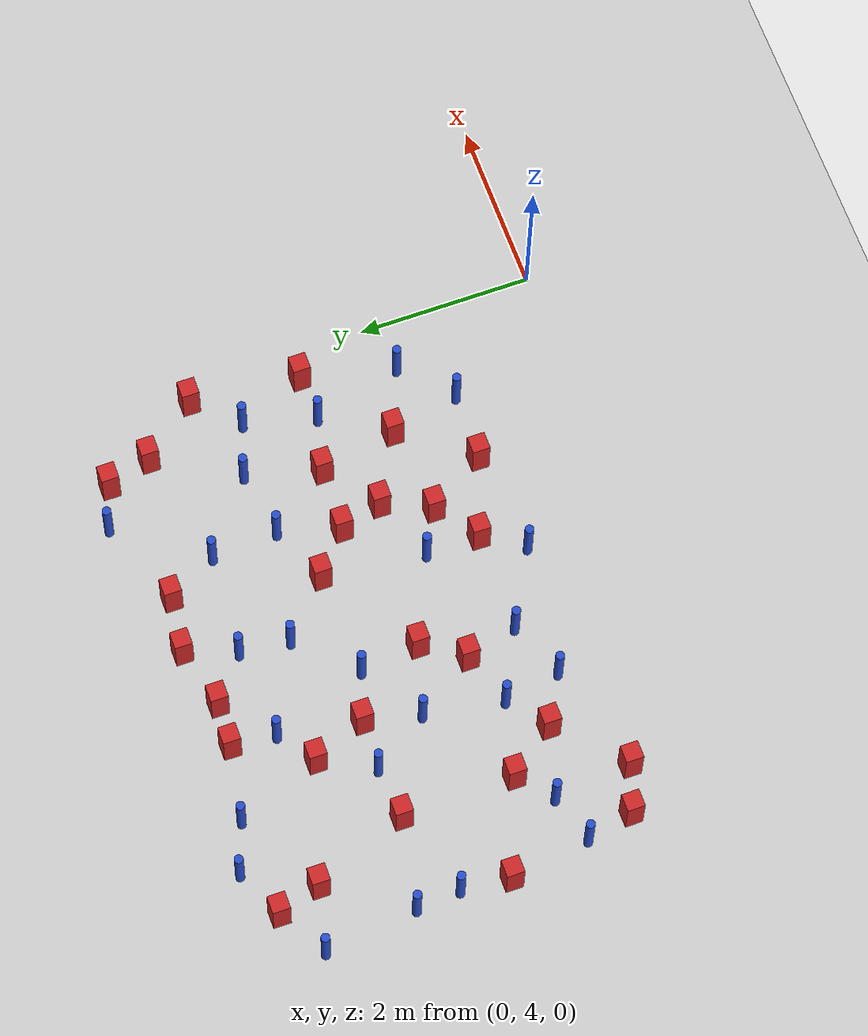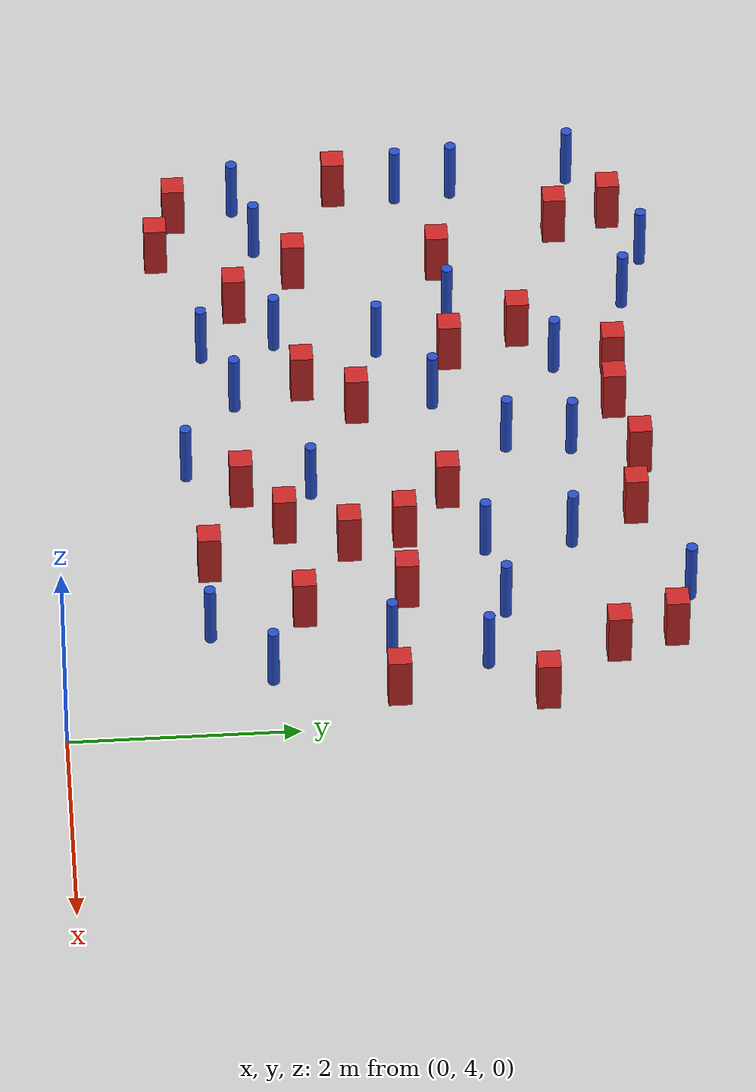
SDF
<sdf version="1.6">
 <world name="default">
  <model name="ground_plane">
   <static>1</static>
   <link name="link">
    <collision name="collision">
     <geometry><plane><normal>0 0 1</normal><size>100 100</size></plane></geometry>
     <surface><friction><ode><mu>100</mu><mu2>50</mu2></ode></friction></surface>
    </collision>
    <visual name="visual">
     <cast_shadows>0</cast_shadows>
     <geometry><plane><normal>0 0 1</normal><size>100 100</size></plane></geometry>
     <material>
      <ambient>1.0 1.0 1.0 1.0</ambient>
      <diffuse>0.8 0.8 0.8 1.0</diffuse>
      <specular>0.01 0.01 0.01 1.000000</specular>
     </material>
    </visual>
   </link>
  </model>
  <model name="square_post_obstacle8">
   <static>true</static>
   <pose>-2.85117813778 5.63529117119 1.91545236811e-07 -7.35059704564e-06 1.12565212e-07 2.39332434364e-05</pose>
   <link name="link">
    <pose>0 0 0.25 0 -0 0</pose>
    <inertial>
     <mass>100</mass>
     <inertia>
      <ixx>0.166667</ixx>
      <ixy>0</ixy>
      <ixz>0</ixz>
      <iyy>0.166667</iyy>
      <iyz>0</iyz>
      <izz>0.166667</izz>
     </inertia>
    </inertial>
    <collision name="collision"><geometry><box><size>.2 .2 .5</size></box></geometry></collision>
    <visual name="visual">
     <geometry><box><size>.2 .2 .5</size></box></geometry>
     <material>
      <script><name>Gazebo/Red</name><uri>file://media/materials/scripts/gazebo.material</uri></script>
     </material>
    </visual>
   </link>
  </model>
  <model name="pole_obstacle10">
   <static>true</static>
   <pose>-3.33697013683 7.99932537133 7.38925637345e-09 -8.47170692799e-08 1.24976765031e-08 -1.7451309302e-07</pose>
   <link name="link">
    <pose>0 0 0.3 0 -0 0</pose>
    <inertial>
     <mass>1</mass>
     <inertia><ixx>0.145833</ixx><ixy>0</ixy><ixz>0</ixz><iyy>0.145833</iyy><iyz>0</iyz><izz>0.125</izz></inertia>
    </inertial>
    <collision name="collision">
     <geometry><cylinder><radius>0.05</radius><length>.6</length></cylinder></geometry>
    </collision>
    <visual name="visual">
     <geometry><cylinder><radius>0.05</radius><length>.6</length></cylinder></geometry>
     <material>
      <script><name>Gazebo/Blue</name><uri>file://media/materials/scripts/gazebo.material</uri></script>
     </material>
    </visual>
   </link>
  </model>
  <model name="pole_obstacle13">
   <static>true</static>
   <pose>-5.12154698466 9.1769198991 7.38925637345e-09 -8.471706928e-08 1.24976765081e-08 -1.74513093015e-07</pose>
   <link name="link">
    <pose>0 0 0.3 0 -0 0</pose>
    <inertial>
     <mass>1</mass>
     <inertia><ixx>0.145833</ixx><ixy>0</ixy><ixz>0</ixz><iyy>0.145833</iyy><iyz>0</iyz><izz>0.125</izz></inertia>
    </inertial>
    <collision name="collision">
     <geometry><cylinder><radius>0.05</radius><length>.6</length></cylinder></geometry>
    </collision>
    <visual name="visual">
     <geometry><cylinder><radius>0.05</radius><length>.6</length></cylinder></geometry>
     <material>
      <script><name>Gazebo/Blue</name><uri>file://media/materials/scripts/gazebo.material</uri></script>
     </material>
    </visual>
   </link>
  </model>
  <model name="square_post_obstacle23">
   <static>true</static>
   <pose>-3.84272966479 6.70948858629 1.91545236811e-07 -7.35059704564e-06 1.12565212e-07 2.39332434364e-05</pose>
   <link name="link">
    <pose>0 0 0.25 0 -0 0</pose>
    <inertial>
     <mass>100</mass>
     <inertia>
      <ixx>0.166667</ixx>
      <ixy>0</ixy>
      <ixz>0</ixz>
      <iyy>0.166667</iyy>
      <iyz>0</iyz>
      <izz>0.166667</izz>
     </inertia>
    </inertial>
    <collision name="collision"><geometry><box><size>.2 .2 .5</size></box></geometry></collision>
    <visual name="visual">
     <geometry><box><size>.2 .2 .5</size></box></geometry>
     <material>
      <script><name>Gazebo/Red</name><uri>file://media/materials/scripts/gazebo.material</uri></script>
     </material>
    </visual>
   </link>
  </model>
  <model name="pole_obstacle17">
   <static>true</static>
   <pose>-4.62779772236 6.93861745635 7.38925637345e-09 -8.47170692796e-08 1.24976764786e-08 -1.74513093032e-07</pose>
   <link name="link">
    <pose>0 0 0.3 0 -0 0</pose>
    <inertial>
     <mass>1</mass>
     <inertia><ixx>0.145833</ixx><ixy>0</ixy><ixz>0</ixz><iyy>0.145833</iyy><iyz>0</iyz><izz>0.125</izz></inertia>
    </inertial>
    <collision name="collision">
     <geometry><cylinder><radius>0.05</radius><length>.6</length></cylinder></geometry>
    </collision>
    <visual name="visual">
     <geometry><cylinder><radius>0.05</radius><length>.6</length></cylinder></geometry>
     <material>
      <script><name>Gazebo/Blue</name><uri>file://media/materials/scripts/gazebo.material</uri></script>
     </material>
    </visual>
   </link>
  </model>
  <model name="pole_obstacle22">
   <static>true</static>
   <pose>-4.65389492948 5.37923687234 7.38925637345e-09 -8.47170692796e-08 1.24976764786e-08 -1.74513093032e-07</pose>
   <link name="link">
    <pose>0 0 0.3 0 -0 0</pose>
    <inertial>
     <mass>1</mass>
     <inertia><ixx>0.145833</ixx><ixy>0</ixy><ixz>0</ixz><iyy>0.145833</iyy><iyz>0</iyz><izz>0.125</izz></inertia>
    </inertial>
    <collision name="collision">
     <geometry><cylinder><radius>0.05</radius><length>.6</length></cylinder></geometry>
    </collision>
    <visual name="visual">
     <geometry><cylinder><radius>0.05</radius><length>.6</length></cylinder></geometry>
     <material>
      <script><name>Gazebo/Blue</name><uri>file://media/materials/scripts/gazebo.material</uri></script>
     </material>
    </visual>
   </link>
  </model>
  <model name="square_post_obstacle34">
   <static>true</static>
   <pose>-6.08547360905 8.63801015328 1.91545236811e-07 -7.35059704564e-06 1.12565212e-07 2.39332434364e-05</pose>
   <link name="link">
    <pose>0 0 0.25 0 -0 0</pose>
    <inertial>
     <mass>100</mass>
     <inertia>
      <ixx>0.166667</ixx>
      <ixy>0</ixy>
      <ixz>0</ixz>
      <iyy>0.166667</iyy>
      <iyz>0</iyz>
      <izz>0.166667</izz>
     </inertia>
    </inertial>
    <collision name="collision"><geometry><box><size>.2 .2 .5</size></box></geometry></collision>
    <visual name="visual">
     <geometry><box><size>.2 .2 .5</size></box></geometry>
     <material>
      <script><name>Gazebo/Red</name><uri>file://media/materials/scripts/gazebo.material</uri></script>
     </material>
    </visual>
   </link>
  </model>
  <model name="pole_obstacle32">
   <static>true</static>
   <pose>-1.29136101766 7.83882580298 7.38925637345e-09 -8.47170692799e-08 1.24976765033e-08 -1.74513093018e-07</pose>
   <link name="link">
    <pose>0 0 0.3 0 -0 0</pose>
    <inertial>
     <mass>1</mass>
     <inertia><ixx>0.145833</ixx><ixy>0</ixy><ixz>0</ixz><iyy>0.145833</iyy><iyz>0</iyz><izz>0.125</izz></inertia>
    </inertial>
    <collision name="collision">
     <geometry><cylinder><radius>0.05</radius><length>.6</length></cylinder></geometry>
    </collision>
    <visual name="visual">
     <geometry><cylinder><radius>0.05</radius><length>.6</length></cylinder></geometry>
     <material>
      <script><name>Gazebo/Blue</name><uri>file://media/materials/scripts/gazebo.material</uri></script>
     </material>
    </visual>
   </link>
  </model>
  <model name="pole_obstacle38">
   <static>true</static>
   <pose>-6.5599274437 5.75432917314 7.38925637345e-09 -8.47170692796e-08 1.24976764786e-08 -1.74513093032e-07</pose>
   <link name="link">
    <pose>0 0 0.3 0 -0 0</pose>
    <inertial>
     <mass>1</mass>
     <inertia><ixx>0.145833</ixx><ixy>0</ixy><ixz>0</ixz><iyy>0.145833</iyy><iyz>0</iyz><izz>0.125</izz></inertia>
    </inertial>
    <collision name="collision">
     <geometry><cylinder><radius>0.05</radius><length>.6</length></cylinder></geometry>
    </collision>
    <visual name="visual">
     <geometry><cylinder><radius>0.05</radius><length>.6</length></cylinder></geometry>
     <material>
      <script><name>Gazebo/Blue</name><uri>file://media/materials/scripts/gazebo.material</uri></script>
     </material>
    </visual>
   </link>
  </model>
  <model name="square_post_obstacle43">
   <static>true</static>
   <pose>-1.94631033463 5.3121222031 1.91545236811e-07 -7.35059704564e-06 1.12565212e-07 2.39332434364e-05</pose>
   <link name="link">
    <pose>0 0 0.25 0 -0 0</pose>
    <inertial>
     <mass>100</mass>
     <inertia>
      <ixx>0.166667</ixx>
      <ixy>0</ixy>
      <ixz>0</ixz>
      <iyy>0.166667</iyy>
      <iyz>0</iyz>
      <izz>0.166667</izz>
     </inertia>
    </inertial>
    <collision name="collision"><geometry><box><size>.2 .2 .5</size></box></geometry></collision>
    <visual name="visual">
     <geometry><box><size>.2 .2 .5</size></box></geometry>
     <material>
      <script><name>Gazebo/Red</name><uri>file://media/materials/scripts/gazebo.material</uri></script>
     </material>
    </visual>
   </link>
  </model>
  <model name="square_post_obstacle44">
   <static>true</static>
   <pose>-5.20450427669 5.69777726759 1.91545236811e-07 -7.35059704564e-06 1.12565212e-07 2.39332434364e-05</pose>
   <link name="link">
    <pose>0 0 0.25 0 -0 0</pose>
    <inertial>
     <mass>100</mass>
     <inertia>
      <ixx>0.166667</ixx>
      <ixy>0</ixy>
      <ixz>0</ixz>
      <iyy>0.166667</iyy>
      <iyz>0</iyz>
      <izz>0.166667</izz>
     </inertia>
    </inertial>
    <collision name="collision"><geometry><box><size>.2 .2 .5</size></box></geometry></collision>
    <visual name="visual">
     <geometry><box><size>.2 .2 .5</size></box></geometry>
     <material>
      <script><name>Gazebo/Red</name><uri>file://media/materials/scripts/gazebo.material</uri></script>
     </material>
    </visual>
   </link>
  </model>
  <model name="pole_obstacle47">
   <static>true</static>
   <pose>-2.0612578263 7.71829305685 7.38925637345e-09 -8.47170692798e-08 1.24976765033e-08 -1.74513093019e-07</pose>
   <link name="link">
    <pose>0 0 0.3 0 -0 0</pose>
    <inertial>
     <mass>1</mass>
     <inertia><ixx>0.145833</ixx><ixy>0</ixy><ixz>0</ixz><iyy>0.145833</iyy><iyz>0</iyz><izz>0.125</izz></inertia>
    </inertial>
    <collision name="collision">
     <geometry><cylinder><radius>0.05</radius><length>.6</length></cylinder></geometry>
    </collision>
    <visual name="visual">
     <geometry><cylinder><radius>0.05</radius><length>.6</length></cylinder></geometry>
     <material>
      <script><name>Gazebo/Blue</name><uri>file://media/materials/scripts/gazebo.material</uri></script>
     </material>
    </visual>
   </link>
  </model>
  <model name="square_post_obstacle53">
   <static>true</static>
   <pose>-5.649411428 7.54837377091 1.91545236811e-07 -7.35059704564e-06 1.12565212e-07 2.39332434364e-05</pose>
   <link name="link">
    <pose>0 0 0.25 0 -0 0</pose>
    <inertial>
     <mass>100</mass>
     <inertia>
      <ixx>0.166667</ixx>
      <ixy>0</ixy>
      <ixz>0</ixz>
      <iyy>0.166667</iyy>
      <iyz>0</iyz>
      <izz>0.166667</izz>
     </inertia>
    </inertial>
    <collision name="collision"><geometry><box><size>.2 .2 .5</size></box></geometry></collision>
    <visual name="visual">
     <geometry><box><size>.2 .2 .5</size></box></geometry>
     <material>
      <script><name>Gazebo/Red</name><uri>file://media/materials/scripts/gazebo.material</uri></script>
     </material>
    </visual>
   </link>
  </model>
  <model name="square_post_obstacle54">
   <static>true</static>
   <pose>-1.34369992556 6.10237967423 1.91545236811e-07 -7.35059704564e-06 1.12565212e-07 2.39332434364e-05</pose>
   <link name="link">
    <pose>0 0 0.25 0 -0 0</pose>
    <inertial>
     <mass>100</mass>
     <inertia>
      <ixx>0.166667</ixx>
      <ixy>0</ixy>
      <ixz>0</ixz>
      <iyy>0.166667</iyy>
      <iyz>0</iyz>
      <izz>0.166667</izz>
     </inertia>
    </inertial>
    <collision name="collision"><geometry><box><size>.2 .2 .5</size></box></geometry></collision>
    <visual name="visual">
     <geometry><box><size>.2 .2 .5</size></box></geometry>
     <material>
      <script><name>Gazebo/Red</name><uri>file://media/materials/scripts/gazebo.material</uri></script>
     </material>
    </visual>
   </link>
  </model>
  <model name="square_post_obstacle55">
   <static>true</static>
   <pose>-4.26743266888 9.01434277642 1.91545236811e-07 -7.35059704564e-06 1.12565212e-07 2.39332434364e-05</pose>
   <link name="link">
    <pose>0 0 0.25 0 -0 0</pose>
    <inertial>
     <mass>100</mass>
     <inertia>
      <ixx>0.166667</ixx>
      <ixy>0</ixy>
      <ixz>0</ixz>
      <iyy>0.166667</iyy>
      <iyz>0</iyz>
      <izz>0.166667</izz>
     </inertia>
    </inertial>
    <collision name="collision"><geometry><box><size>.2 .2 .5</size></box></geometry></collision>
    <visual name="visual">
     <geometry><box><size>.2 .2 .5</size></box></geometry>
     <material>
      <script><name>Gazebo/Red</name><uri>file://media/materials/scripts/gazebo.material</uri></script>
     </material>
    </visual>
   </link>
  </model>
  <model name="square_post_obstacle56">
   <static>true</static>
   <pose>-2.26100982355 7.02769687597 1.91545236811e-07 -7.35059704564e-06 1.12565212e-07 2.39332434364e-05</pose>
   <link name="link">
    <pose>0 0 0.25 0 -0 0</pose>
    <inertial>
     <mass>100</mass>
     <inertia>
      <ixx>0.166667</ixx>
      <ixy>0</ixy>
      <ixz>0</ixz>
      <iyy>0.166667</iyy>
      <iyz>0</iyz>
      <izz>0.166667</izz>
     </inertia>
    </inertial>
    <collision name="collision"><geometry><box><size>.2 .2 .5</size></box></geometry></collision>
    <visual name="visual">
     <geometry><box><size>.2 .2 .5</size></box></geometry>
     <material>
      <script><name>Gazebo/Red</name><uri>file://media/materials/scripts/gazebo.material</uri></script>
     </material>
    </visual>
   </link>
  </model>
  <model name="pole_obstacle61">
   <static>true</static>
   <pose>-0.608076688992 5.79210786569 7.38925637345e-09 -8.471706928e-08 1.24976765086e-08 -1.74513093015e-07</pose>
   <link name="link">
    <pose>0 0 0.3 0 -0 0</pose>
    <inertial>
     <mass>1</mass>
     <inertia><ixx>0.145833</ixx><ixy>0</ixy><ixz>0</ixz><iyy>0.145833</iyy><iyz>0</iyz><izz>0.125</izz></inertia>
    </inertial>
    <collision name="collision">
     <geometry><cylinder><radius>0.05</radius><length>.6</length></cylinder></geometry>
    </collision>
    <visual name="visual">
     <geometry><cylinder><radius>0.05</radius><length>.6</length></cylinder></geometry>
     <material>
      <script><name>Gazebo/Blue</name><uri>file://media/materials/scripts/gazebo.material</uri></script>
     </material>
    </visual>
   </link>
  </model>
  <model name="pole_obstacle64">
   <static>true</static>
   <pose>-5.05421728066 7.59828432886 7.38925637345e-09 -8.47170692796e-08 1.24976764786e-08 -1.74513093032e-07</pose>
   <link name="link">
    <pose>0 0 0.3 0 -0 0</pose>
    <inertial>
     <mass>1</mass>
     <inertia><ixx>0.145833</ixx><ixy>0</ixy><ixz>0</ixz><iyy>0.145833</iyy><iyz>0</iyz><izz>0.125</izz></inertia>
    </inertial>
    <collision name="collision">
     <geometry><cylinder><radius>0.05</radius><length>.6</length></cylinder></geometry>
    </collision>
    <visual name="visual">
     <geometry><cylinder><radius>0.05</radius><length>.6</length></cylinder></geometry>
     <material>
      <script><name>Gazebo/Blue</name><uri>file://media/materials/scripts/gazebo.material</uri></script>
     </material>
    </visual>
   </link>
  </model>
  <model name="square_post_obstacle75">
   <static>true</static>
   <pose>-1.52117082725 6.99808493489 1.91545236811e-07 -7.35059704564e-06 1.12565212e-07 2.39332434364e-05</pose>
   <link name="link">
    <pose>0 0 0.25 0 -0 0</pose>
    <inertial>
     <mass>100</mass>
     <inertia>
      <ixx>0.166667</ixx>
      <ixy>0</ixy>
      <ixz>0</ixz>
      <iyy>0.166667</iyy>
      <iyz>0</iyz>
      <izz>0.166667</izz>
     </inertia>
    </inertial>
    <collision name="collision"><geometry><box><size>.2 .2 .5</size></box></geometry></collision>
    <visual name="visual">
     <geometry><box><size>.2 .2 .5</size></box></geometry>
     <material>
      <script><name>Gazebo/Red</name><uri>file://media/materials/scripts/gazebo.material</uri></script>
     </material>
    </visual>
   </link>
  </model>
  <model name="pole_obstacle74">
   <static>true</static>
   <pose>-6.63972280259 7.23884683641 7.38925637345e-09 -8.47170692796e-08 1.24976764786e-08 -1.74513093032e-07</pose>
   <link name="link">
    <pose>0 0 0.3 0 -0 0</pose>
    <inertial>
     <mass>1</mass>
     <inertia><ixx>0.145833</ixx><ixy>0</ixy><ixz>0</ixz><iyy>0.145833</iyy><iyz>0</iyz><izz>0.125</izz></inertia>
    </inertial>
    <collision name="collision">
     <geometry><cylinder><radius>0.05</radius><length>.6</length></cylinder></geometry>
    </collision>
    <visual name="visual">
     <geometry><cylinder><radius>0.05</radius><length>.6</length></cylinder></geometry>
     <material>
      <script><name>Gazebo/Blue</name><uri>file://media/materials/scripts/gazebo.material</uri></script>
     </material>
    </visual>
   </link>
  </model>
  <model name="pole_obstacle79">
   <static>true</static>
   <pose>-2.10921225694 8.48121805027 7.38925637345e-09 -8.47170692793e-08 1.24976764408e-08 -1.74513093041e-07</pose>
   <link name="link">
    <pose>0 0 0.3 0 -0 0</pose>
    <inertial>
     <mass>1</mass>
     <inertia><ixx>0.145833</ixx><ixy>0</ixy><ixz>0</ixz><iyy>0.145833</iyy><iyz>0</iyz><izz>0.125</izz></inertia>
    </inertial>
    <collision name="collision">
     <geometry><cylinder><radius>0.05</radius><length>.6</length></cylinder></geometry>
    </collision>
    <visual name="visual">
     <geometry><cylinder><radius>0.05</radius><length>.6</length></cylinder></geometry>
     <material>
      <script><name>Gazebo/Blue</name><uri>file://media/materials/scripts/gazebo.material</uri></script>
     </material>
    </visual>
   </link>
  </model>
  <model name="square_post_obstacle79">
   <static>true</static>
   <pose>-5.62260687982 6.25186452101 1.91545236811e-07 -7.35059704564e-06 1.12565212e-07 2.39332434364e-05</pose>
   <link name="link">
    <pose>0 0 0.25 0 -0 0</pose>
    <inertial>
     <mass>100</mass>
     <inertia>
      <ixx>0.166667</ixx>
      <ixy>0</ixy>
      <ixz>0</ixz>
      <iyy>0.166667</iyy>
      <iyz>0</iyz>
      <izz>0.166667</izz>
     </inertia>
    </inertial>
    <collision name="collision"><geometry><box><size>.2 .2 .5</size></box></geometry></collision>
    <visual name="visual">
     <geometry><box><size>.2 .2 .5</size></box></geometry>
     <material>
      <script><name>Gazebo/Red</name><uri>file://media/materials/scripts/gazebo.material</uri></script>
     </material>
    </visual>
   </link>
  </model>
  <model name="pole_obstacle91">
   <static>true</static>
   <pose>-6.80543661352 8.81340913702 7.38925637345e-09 -8.471706928e-08 1.24976765081e-08 -1.74513093015e-07</pose>
   <link name="link">
    <pose>0 0 0.3 0 -0 0</pose>
    <inertial>
     <mass>1</mass>
     <inertia><ixx>0.145833</ixx><ixy>0</ixy><ixz>0</ixz><iyy>0.145833</iyy><iyz>0</iyz><izz>0.125</izz></inertia>
    </inertial>
    <collision name="collision">
     <geometry><cylinder><radius>0.05</radius><length>.6</length></cylinder></geometry>
    </collision>
    <visual name="visual">
     <geometry><cylinder><radius>0.05</radius><length>.6</length></cylinder></geometry>
     <material>
      <script><name>Gazebo/Blue</name><uri>file://media/materials/scripts/gazebo.material</uri></script>
     </material>
    </visual>
   </link>
  </model>
  <model name="square_post_obstacle83">
   <static>true</static>
   <pose>-3.76320044509 8.98286353952 1.91545236811e-07 -7.35059704564e-06 1.12565212e-07 2.39332434364e-05</pose>
   <link name="link">
    <pose>0 0 0.25 0 -0 0</pose>
    <inertial>
     <mass>100</mass>
     <inertia>
      <ixx>0.166667</ixx>
      <ixy>0</ixy>
      <ixz>0</ixz>
      <iyy>0.166667</iyy>
      <iyz>0</iyz>
      <izz>0.166667</izz>
     </inertia>
    </inertial>
    <collision name="collision"><geometry><box><size>.2 .2 .5</size></box></geometry></collision>
    <visual name="visual">
     <geometry><box><size>.2 .2 .5</size></box></geometry>
     <material>
      <script><name>Gazebo/Red</name><uri>file://media/materials/scripts/gazebo.material</uri></script>
     </material>
    </visual>
   </link>
  </model>
  <model name="pole_obstacle100">
   <static>true</static>
   <pose>-1.3965002214 9.44811167518 7.38925637345e-09 -8.47170692798e-08 1.24976764881e-08 -1.74513093027e-07</pose>
   <link name="link">
    <pose>0 0 0.3 0 -0 0</pose>
    <inertial>
     <mass>1</mass>
     <inertia><ixx>0.145833</ixx><ixy>0</ixy><ixz>0</ixz><iyy>0.145833</iyy><iyz>0</iyz><izz>0.125</izz></inertia>
    </inertial>
    <collision name="collision">
     <geometry><cylinder><radius>0.05</radius><length>.6</length></cylinder></geometry>
    </collision>
    <visual name="visual">
     <geometry><cylinder><radius>0.05</radius><length>.6</length></cylinder></geometry>
     <material>
      <script><name>Gazebo/Blue</name><uri>file://media/materials/scripts/gazebo.material</uri></script>
     </material>
    </visual>
   </link>
  </model>
  <model name="square_post_obstacle91">
   <static>true</static>
   <pose>-0.227013342698 8.11978466571 1.91545236811e-07 -7.35059704564e-06 1.12565212e-07 2.39332434364e-05</pose>
   <link name="link">
    <pose>0 0 0.25 0 -0 0</pose>
    <inertial>
     <mass>100</mass>
     <inertia>
      <ixx>0.166667</ixx>
      <ixy>0</ixy>
      <ixz>0</ixz>
      <iyy>0.166667</iyy>
      <iyz>0</iyz>
      <izz>0.166667</izz>
     </inertia>
    </inertial>
    <collision name="collision"><geometry><box><size>.2 .2 .5</size></box></geometry></collision>
    <visual name="visual">
     <geometry><box><size>.2 .2 .5</size></box></geometry>
     <material>
      <script><name>Gazebo/Red</name><uri>file://media/materials/scripts/gazebo.material</uri></script>
     </material>
    </visual>
   </link>
  </model>
  <model name="square_post_obstacle94">
   <static>true</static>
   <pose>-0.351096433382 6.85449015297 1.91545236811e-07 -7.35059704564e-06 1.12565212e-07 2.39332434364e-05</pose>
   <link name="link">
    <pose>0 0 0.25 0 -0 0</pose>
    <inertial>
     <mass>100</mass>
     <inertia>
      <ixx>0.166667</ixx>
      <ixy>0</ixy>
      <ixz>0</ixz>
      <iyy>0.166667</iyy>
      <iyz>0</iyz>
      <izz>0.166667</izz>
     </inertia>
    </inertial>
    <collision name="collision"><geometry><box><size>.2 .2 .5</size></box></geometry></collision>
    <visual name="visual">
     <geometry><box><size>.2 .2 .5</size></box></geometry>
     <material>
      <script><name>Gazebo/Red</name><uri>file://media/materials/scripts/gazebo.material</uri></script>
     </material>
    </visual>
   </link>
  </model>
  <model name="pole_obstacle108">
   <static>true</static>
   <pose>-1.1553570726 5.28086694591 7.38925637345e-09 -8.47170692799e-08 1.24976765033e-08 -1.74513093018e-07</pose>
   <link name="link">
    <pose>0 0 0.3 0 -0 0</pose>
    <inertial>
     <mass>1</mass>
     <inertia><ixx>0.145833</ixx><ixy>0</ixy><ixz>0</ixz><iyy>0.145833</iyy><iyz>0</iyz><izz>0.125</izz></inertia>
    </inertial>
    <collision name="collision">
     <geometry><cylinder><radius>0.05</radius><length>.6</length></cylinder></geometry>
    </collision>
    <visual name="visual">
     <geometry><cylinder><radius>0.05</radius><length>.6</length></cylinder></geometry>
     <material>
      <script><name>Gazebo/Blue</name><uri>file://media/materials/scripts/gazebo.material</uri></script>
     </material>
    </visual>
   </link>
  </model>
  <model name="pole_obstacle111">
   <static>true</static>
   <pose>-3.27678230397 8.57176367591 7.38925637345e-09 -8.47170692799e-08 1.24976765012e-08 -1.74513093021e-07</pose>
   <link name="link">
    <pose>0 0 0.3 0 -0 0</pose>
    <inertial>
     <mass>1</mass>
     <inertia><ixx>0.145833</ixx><ixy>0</ixy><ixz>0</ixz><iyy>0.145833</iyy><iyz>0</iyz><izz>0.125</izz></inertia>
    </inertial>
    <collision name="collision">
     <geometry><cylinder><radius>0.05</radius><length>.6</length></cylinder></geometry>
    </collision>
    <visual name="visual">
     <geometry><cylinder><radius>0.05</radius><length>.6</length></cylinder></geometry>
     <material>
      <script><name>Gazebo/Blue</name><uri>file://media/materials/scripts/gazebo.material</uri></script>
     </material>
    </visual>
   </link>
  </model>
  <model name="pole_obstacle115">
   <static>true</static>
   <pose>-4.77469274781 6.03304051025 7.38925637345e-09 -8.47170692796e-08 1.24976764786e-08 -1.74513093032e-07</pose>
   <link name="link">
    <pose>0 0 0.3 0 -0 0</pose>
    <inertial>
     <mass>1</mass>
     <inertia><ixx>0.145833</ixx><ixy>0</ixy><ixz>0</ixz><iyy>0.145833</iyy><iyz>0</iyz><izz>0.125</izz></inertia>
    </inertial>
    <collision name="collision">
     <geometry><cylinder><radius>0.05</radius><length>.6</length></cylinder></geometry>
    </collision>
    <visual name="visual">
     <geometry><cylinder><radius>0.05</radius><length>.6</length></cylinder></geometry>
     <material>
      <script><name>Gazebo/Blue</name><uri>file://media/materials/scripts/gazebo.material</uri></script>
     </material>
    </visual>
   </link>
  </model>
  <model name="square_post_obstacle104">
   <static>true</static>
   <pose>-2.37551149837 5.98932020288 1.91545236811e-07 -7.35059704564e-06 1.12565212e-07 2.39332434364e-05</pose>
   <link name="link">
    <pose>0 0 0.25 0 -0 0</pose>
    <inertial>
     <mass>100</mass>
     <inertia>
      <ixx>0.166667</ixx>
      <ixy>0</ixy>
      <ixz>0</ixz>
      <iyy>0.166667</iyy>
      <iyz>0</iyz>
      <izz>0.166667</izz>
     </inertia>
    </inertial>
    <collision name="collision"><geometry><box><size>.2 .2 .5</size></box></geometry></collision>
    <visual name="visual">
     <geometry><box><size>.2 .2 .5</size></box></geometry>
     <material>
      <script><name>Gazebo/Red</name><uri>file://media/materials/scripts/gazebo.material</uri></script>
     </material>
    </visual>
   </link>
  </model>
  <model name="pole_obstacle124">
   <static>true</static>
   <pose>-2.85721504192 6.24876067325 7.38925637345e-09 -8.47170692798e-08 1.24976765033e-08 -1.74513093019e-07</pose>
   <link name="link">
    <pose>0 0 0.3 0 -0 0</pose>
    <inertial>
     <mass>1</mass>
     <inertia><ixx>0.145833</ixx><ixy>0</ixy><ixz>0</ixz><iyy>0.145833</iyy><iyz>0</iyz><izz>0.125</izz></inertia>
    </inertial>
    <collision name="collision">
     <geometry><cylinder><radius>0.05</radius><length>.6</length></cylinder></geometry>
    </collision>
    <visual name="visual">
     <geometry><cylinder><radius>0.05</radius><length>.6</length></cylinder></geometry>
     <material>
      <script><name>Gazebo/Blue</name><uri>file://media/materials/scripts/gazebo.material</uri></script>
     </material>
    </visual>
   </link>
  </model>
  <model name="pole_obstacle126">
   <static>true</static>
   <pose>-3.15098827732 5.1698936235 7.38925637345e-09 -8.47170692798e-08 1.24976765033e-08 -1.74513093019e-07</pose>
   <link name="link">
    <pose>0 0 0.3 0 -0 0</pose>
    <inertial>
     <mass>1</mass>
     <inertia><ixx>0.145833</ixx><ixy>0</ixy><ixz>0</ixz><iyy>0.145833</iyy><iyz>0</iyz><izz>0.125</izz></inertia>
    </inertial>
    <collision name="collision">
     <geometry><cylinder><radius>0.05</radius><length>.6</length></cylinder></geometry>
    </collision>
    <visual name="visual">
     <geometry><cylinder><radius>0.05</radius><length>.6</length></cylinder></geometry>
     <material>
      <script><name>Gazebo/Blue</name><uri>file://media/materials/scripts/gazebo.material</uri></script>
     </material>
    </visual>
   </link>
  </model>
  <model name="pole_obstacle128">
   <static>true</static>
   <pose>-6.68076812294 7.74662865052 7.38925637345e-09 -8.47170692796e-08 1.24976764786e-08 -1.74513093032e-07</pose>
   <link name="link">
    <pose>0 0 0.3 0 -0 0</pose>
    <inertial>
     <mass>1</mass>
     <inertia><ixx>0.145833</ixx><ixy>0</ixy><ixz>0</ixz><iyy>0.145833</iyy><iyz>0</iyz><izz>0.125</izz></inertia>
    </inertial>
    <collision name="collision">
     <geometry><cylinder><radius>0.05</radius><length>.6</length></cylinder></geometry>
    </collision>
    <visual name="visual">
     <geometry><cylinder><radius>0.05</radius><length>.6</length></cylinder></geometry>
     <material>
      <script><name>Gazebo/Blue</name><uri>file://media/materials/scripts/gazebo.material</uri></script>
     </material>
    </visual>
   </link>
  </model>
  <model name="square_post_obstacle131">
   <static>true</static>
   <pose>-0.751566842856 8.76969732846 1.91545236811e-07 -7.35059704564e-06 1.12565212e-07 2.39332434364e-05</pose>
   <link name="link">
    <pose>0 0 0.25 0 -0 0</pose>
    <inertial>
     <mass>100</mass>
     <inertia>
      <ixx>0.166667</ixx>
      <ixy>0</ixy>
      <ixz>0</ixz>
      <iyy>0.166667</iyy>
      <iyz>0</iyz>
      <izz>0.166667</izz>
     </inertia>
    </inertial>
    <collision name="collision"><geometry><box><size>.2 .2 .5</size></box></geometry></collision>
    <visual name="visual">
     <geometry><box><size>.2 .2 .5</size></box></geometry>
     <material>
      <script><name>Gazebo/Red</name><uri>file://media/materials/scripts/gazebo.material</uri></script>
     </material>
    </visual>
   </link>
  </model>
  <model name="pole_obstacle145">
   <static>true</static>
   <pose>-3.9258891956 7.38931489499 7.38925637345e-09 -8.47170692798e-08 1.24976765033e-08 -1.74513093019e-07</pose>
   <link name="link">
    <pose>0 0 0.3 0 -0 0</pose>
    <inertial>
     <mass>1</mass>
     <inertia><ixx>0.145833</ixx><ixy>0</ixy><ixz>0</ixz><iyy>0.145833</iyy><iyz>0</iyz><izz>0.125</izz></inertia>
    </inertial>
    <collision name="collision">
     <geometry><cylinder><radius>0.05</radius><length>.6</length></cylinder></geometry>
    </collision>
    <visual name="visual">
     <geometry><cylinder><radius>0.05</radius><length>.6</length></cylinder></geometry>
     <material>
      <script><name>Gazebo/Blue</name><uri>file://media/materials/scripts/gazebo.material</uri></script>
     </material>
    </visual>
   </link>
  </model>
  <model name="pole_obstacle148">
   <static>true</static>
   <pose>-4.32429262683 8.49989443466 7.38925637345e-09 -8.471706928e-08 1.24976765081e-08 -1.74513093015e-07</pose>
   <link name="link">
    <pose>0 0 0.3 0 -0 0</pose>
    <inertial>
     <mass>1</mass>
     <inertia><ixx>0.145833</ixx><ixy>0</ixy><ixz>0</ixz><iyy>0.145833</iyy><iyz>0</iyz><izz>0.125</izz></inertia>
    </inertial>
    <collision name="collision">
     <geometry><cylinder><radius>0.05</radius><length>.6</length></cylinder></geometry>
    </collision>
    <visual name="visual">
     <geometry><cylinder><radius>0.05</radius><length>.6</length></cylinder></geometry>
     <material>
      <script><name>Gazebo/Blue</name><uri>file://media/materials/scripts/gazebo.material</uri></script>
     </material>
    </visual>
   </link>
  </model>
  <model name="pole_obstacle151">
   <static>true</static>
   <pose>-4.00423228848 5.64011504495 7.38925637345e-09 -8.47170692795e-08 1.24976764731e-08 -1.74513093035e-07</pose>
   <link name="link">
    <pose>0 0 0.3 0 -0 0</pose>
    <inertial>
     <mass>1</mass>
     <inertia><ixx>0.145833</ixx><ixy>0</ixy><ixz>0</ixz><iyy>0.145833</iyy><iyz>0</iyz><izz>0.125</izz></inertia>
    </inertial>
    <collision name="collision">
     <geometry><cylinder><radius>0.05</radius><length>.6</length></cylinder></geometry>
    </collision>
    <visual name="visual">
     <geometry><cylinder><radius>0.05</radius><length>.6</length></cylinder></geometry>
     <material>
      <script><name>Gazebo/Blue</name><uri>file://media/materials/scripts/gazebo.material</uri></script>
     </material>
    </visual>
   </link>
  </model>
  <model name="square_post_obstacle141">
   <static>true</static>
   <pose>-4.47786223226 7.57734943873 1.91545236811e-07 -7.35059704564e-06 1.12565212e-07 2.39332434364e-05</pose>
   <link name="link">
    <pose>0 0 0.25 0 -0 0</pose>
    <inertial>
     <mass>100</mass>
     <inertia>
      <ixx>0.166667</ixx>
      <ixy>0</ixy>
      <ixz>0</ixz>
      <iyy>0.166667</iyy>
      <iyz>0</iyz>
      <izz>0.166667</izz>
     </inertia>
    </inertial>
    <collision name="collision"><geometry><box><size>.2 .2 .5</size></box></geometry></collision>
    <visual name="visual">
     <geometry><box><size>.2 .2 .5</size></box></geometry>
     <material>
      <script><name>Gazebo/Red</name><uri>file://media/materials/scripts/gazebo.material</uri></script>
     </material>
    </visual>
   </link>
  </model>
  <model name="pole_obstacle152">
   <static>true</static>
   <pose>-6.00643785955 5.92220396773 7.38925637345e-09 -8.47170692796e-08 1.24976764786e-08 -1.74513093032e-07</pose>
   <link name="link">
    <pose>0 0 0.3 0 -0 0</pose>
    <inertial>
     <mass>1</mass>
     <inertia><ixx>0.145833</ixx><ixy>0</ixy><ixz>0</ixz><iyy>0.145833</iyy><iyz>0</iyz><izz>0.125</izz></inertia>
    </inertial>
    <collision name="collision">
     <geometry><cylinder><radius>0.05</radius><length>.6</length></cylinder></geometry>
    </collision>
    <visual name="visual">
     <geometry><cylinder><radius>0.05</radius><length>.6</length></cylinder></geometry>
     <material>
      <script><name>Gazebo/Blue</name><uri>file://media/materials/scripts/gazebo.material</uri></script>
     </material>
    </visual>
   </link>
  </model>
  <model name="pole_obstacle158">
   <static>true</static>
   <pose>-5.68198583063 9.38596606903 7.38925637345e-09 -8.471706928e-08 1.24976765081e-08 -1.74513093015e-07</pose>
   <link name="link">
    <pose>0 0 0.3 0 -0 0</pose>
    <inertial>
     <mass>1</mass>
     <inertia><ixx>0.145833</ixx><ixy>0</ixy><ixz>0</ixz><iyy>0.145833</iyy><iyz>0</iyz><izz>0.125</izz></inertia>
    </inertial>
    <collision name="collision">
     <geometry><cylinder><radius>0.05</radius><length>.6</length></cylinder></geometry>
    </collision>
    <visual name="visual">
     <geometry><cylinder><radius>0.05</radius><length>.6</length></cylinder></geometry>
     <material>
      <script><name>Gazebo/Blue</name><uri>file://media/materials/scripts/gazebo.material</uri></script>
     </material>
    </visual>
   </link>
  </model>
  <model name="pole_obstacle163">
   <static>true</static>
   <pose>-0.685422278732 7.64542642362 7.38925637345e-09 -8.471706928e-08 1.24976765086e-08 -1.74513093015e-07</pose>
   <link name="link">
    <pose>0 0 0.3 0 -0 0</pose>
    <inertial>
     <mass>1</mass>
     <inertia><ixx>0.145833</ixx><ixy>0</ixy><ixz>0</ixz><iyy>0.145833</iyy><iyz>0</iyz><izz>0.125</izz></inertia>
    </inertial>
    <collision name="collision">
     <geometry><cylinder><radius>0.05</radius><length>.6</length></cylinder></geometry>
    </collision>
    <visual name="visual">
     <geometry><cylinder><radius>0.05</radius><length>.6</length></cylinder></geometry>
     <material>
      <script><name>Gazebo/Blue</name><uri>file://media/materials/scripts/gazebo.material</uri></script>
     </material>
    </visual>
   </link>
  </model>
  <model name="pole_obstacle187">
   <static>true</static>
   <pose>-0.896616099229 6.82950776258 7.38925637345e-09 -8.471706928e-08 1.24976765086e-08 -1.74513093015e-07</pose>
   <link name="link">
    <pose>0 0 0.3 0 -0 0</pose>
    <inertial>
     <mass>1</mass>
     <inertia><ixx>0.145833</ixx><ixy>0</ixy><ixz>0</ixz><iyy>0.145833</iyy><iyz>0</iyz><izz>0.125</izz></inertia>
    </inertial>
    <collision name="collision">
     <geometry><cylinder><radius>0.05</radius><length>.6</length></cylinder></geometry>
    </collision>
    <visual name="visual">
     <geometry><cylinder><radius>0.05</radius><length>.6</length></cylinder></geometry>
     <material>
      <script><name>Gazebo/Blue</name><uri>file://media/materials/scripts/gazebo.material</uri></script>
     </material>
    </visual>
   </link>
  </model>
  <model name="square_post_obstacle176">
   <static>true</static>
   <pose>-6.69124978689 6.67669717981 1.91545236811e-07 -7.35059704564e-06 1.12565212e-07 2.39332434364e-05</pose>
   <link name="link">
    <pose>0 0 0.25 0 -0 0</pose>
    <inertial>
     <mass>100</mass>
     <inertia>
      <ixx>0.166667</ixx>
      <ixy>0</ixy>
      <ixz>0</ixz>
      <iyy>0.166667</iyy>
      <iyz>0</iyz>
      <izz>0.166667</izz>
     </inertia>
    </inertial>
    <collision name="collision"><geometry><box><size>.2 .2 .5</size></box></geometry></collision>
    <visual name="visual">
     <geometry><box><size>.2 .2 .5</size></box></geometry>
     <material>
      <script><name>Gazebo/Red</name><uri>file://media/materials/scripts/gazebo.material</uri></script>
     </material>
    </visual>
   </link>
  </model>
  <model name="square_post_obstacle177">
   <static>true</static>
   <pose>-2.4222555028 9.06205953578 1.91545236811e-07 -7.35059704564e-06 1.12565212e-07 2.39332434364e-05</pose>
   <link name="link">
    <pose>0 0 0.25 0 -0 0</pose>
    <inertial>
     <mass>100</mass>
     <inertia>
      <ixx>0.166667</ixx>
      <ixy>0</ixy>
      <ixz>0</ixz>
      <iyy>0.166667</iyy>
      <iyz>0</iyz>
      <izz>0.166667</izz>
     </inertia>
    </inertial>
    <collision name="collision"><geometry><box><size>.2 .2 .5</size></box></geometry></collision>
    <visual name="visual">
     <geometry><box><size>.2 .2 .5</size></box></geometry>
     <material>
      <script><name>Gazebo/Red</name><uri>file://media/materials/scripts/gazebo.material</uri></script>
     </material>
    </visual>
   </link>
  </model>
  <model name="square_post_obstacle178">
   <static>true</static>
   <pose>-6.24235524557 9.13690113435 1.91545236811e-07 -7.35059704564e-06 1.12565212e-07 2.39332434364e-05</pose>
   <link name="link">
    <pose>0 0 0.25 0 -0 0</pose>
    <inertial>
     <mass>100</mass>
     <inertia>
      <ixx>0.166667</ixx>
      <ixy>0</ixy>
      <ixz>0</ixz>
      <iyy>0.166667</iyy>
      <iyz>0</iyz>
      <izz>0.166667</izz>
     </inertia>
    </inertial>
    <collision name="collision"><geometry><box><size>.2 .2 .5</size></box></geometry></collision>
    <visual name="visual">
     <geometry><box><size>.2 .2 .5</size></box></geometry>
     <material>
      <script><name>Gazebo/Red</name><uri>file://media/materials/scripts/gazebo.material</uri></script>
     </material>
    </visual>
   </link>
  </model>
  <model name="square_post_obstacle182">
   <static>true</static>
   <pose>-5.9106424228 5.02940157116 1.91545236811e-07 -7.35059704564e-06 1.12565212e-07 2.39332434364e-05</pose>
   <link name="link">
    <pose>0 0 0.25 0 -0 0</pose>
    <inertial>
     <mass>100</mass>
     <inertia>
      <ixx>0.166667</ixx>
      <ixy>0</ixy>
      <ixz>0</ixz>
      <iyy>0.166667</iyy>
      <iyz>0</iyz>
      <izz>0.166667</izz>
     </inertia>
    </inertial>
    <collision name="collision"><geometry><box><size>.2 .2 .5</size></box></geometry></collision>
    <visual name="visual">
     <geometry><box><size>.2 .2 .5</size></box></geometry>
     <material>
      <script><name>Gazebo/Red</name><uri>file://media/materials/scripts/gazebo.material</uri></script>
     </material>
    </visual>
   </link>
  </model>
  <model name="square_post_obstacle183">
   <static>true</static>
   <pose>-4.73687935251 8.19902224688 1.91545236811e-07 -7.35059704564e-06 1.12565212e-07 2.39332434364e-05</pose>
   <link name="link">
    <pose>0 0 0.25 0 -0 0</pose>
    <inertial>
     <mass>100</mass>
     <inertia>
      <ixx>0.166667</ixx>
      <ixy>0</ixy>
      <ixz>0</ixz>
      <iyy>0.166667</iyy>
      <iyz>0</iyz>
      <izz>0.166667</izz>
     </inertia>
    </inertial>
    <collision name="collision"><geometry><box><size>.2 .2 .5</size></box></geometry></collision>
    <visual name="visual">
     <geometry><box><size>.2 .2 .5</size></box></geometry>
     <material>
      <script><name>Gazebo/Red</name><uri>file://media/materials/scripts/gazebo.material</uri></script>
     </material>
    </visual>
   </link>
  </model>
  <model name="square_post_obstacle190">
   <static>true</static>
   <pose>-2.72535074178 7.4353809187 1.91545236811e-07 -7.35059704564e-06 1.12565212e-07 2.39332434364e-05</pose>
   <link name="link">
    <pose>0 0 0.25 0 -0 0</pose>
    <inertial>
     <mass>100</mass>
     <inertia>
      <ixx>0.166667</ixx>
      <ixy>0</ixy>
      <ixz>0</ixz>
      <iyy>0.166667</iyy>
      <iyz>0</iyz>
      <izz>0.166667</izz>
     </inertia>
    </inertial>
    <collision name="collision"><geometry><box><size>.2 .2 .5</size></box></geometry></collision>
    <visual name="visual">
     <geometry><box><size>.2 .2 .5</size></box></geometry>
     <material>
      <script><name>Gazebo/Red</name><uri>file://media/materials/scripts/gazebo.material</uri></script>
     </material>
    </visual>
   </link>
  </model>
  <model name="square_post_obstacle198">
   <static>true</static>
   <pose>-6.42901319072 5.21507792873 1.91545236811e-07 -7.35059704564e-06 1.12565212e-07 2.39332434364e-05</pose>
   <link name="link">
    <pose>0 0 0.25 0 -0 0</pose>
    <inertial>
     <mass>100</mass>
     <inertia>
      <ixx>0.166667</ixx>
      <ixy>0</ixy>
      <ixz>0</ixz>
      <iyy>0.166667</iyy>
      <iyz>0</iyz>
      <izz>0.166667</izz>
     </inertia>
    </inertial>
    <collision name="collision"><geometry><box><size>.2 .2 .5</size></box></geometry></collision>
    <visual name="visual">
     <geometry><box><size>.2 .2 .5</size></box></geometry>
     <material>
      <script><name>Gazebo/Red</name><uri>file://media/materials/scripts/gazebo.material</uri></script>
     </material>
    </visual>
   </link>
  </model>
  <model name="square_post_obstacle201">
   <static>true</static>
   <pose>-0.908965263335 9.2825584047 1.91545236811e-07 -7.35059704564e-06 1.12565212e-07 2.39332434364e-05</pose>
   <link name="link">
    <pose>0 0 0.25 0 -0 0</pose>
    <inertial>
     <mass>100</mass>
     <inertia>
      <ixx>0.166667</ixx>
      <ixy>0</ixy>
      <ixz>0</ixz>
      <iyy>0.166667</iyy>
      <iyz>0</iyz>
      <izz>0.166667</izz>
     </inertia>
    </inertial>
    <collision name="collision"><geometry><box><size>.2 .2 .5</size></box></geometry></collision>
    <visual name="visual">
     <geometry><box><size>.2 .2 .5</size></box></geometry>
     <material>
      <script><name>Gazebo/Red</name><uri>file://media/materials/scripts/gazebo.material</uri></script>
     </material>
    </visual>
   </link>
  </model>
  <model name="square_post_obstacle204">
   <static>true</static>
   <pose>-4.16382658122 6.24492800592 1.91545236811e-07 -7.35059704564e-06 1.12565212e-07 2.39332434364e-05</pose>
   <link name="link">
    <pose>0 0 0.25 0 -0 0</pose>
    <inertial>
     <mass>100</mass>
     <inertia>
      <ixx>0.166667</ixx>
      <ixy>0</ixy>
      <ixz>0</ixz>
      <iyy>0.166667</iyy>
      <iyz>0</iyz>
      <izz>0.166667</izz>
     </inertia>
    </inertial>
    <collision name="collision"><geometry><box><size>.2 .2 .5</size></box></geometry></collision>
    <visual name="visual">
     <geometry><box><size>.2 .2 .5</size></box></geometry>
     <material>
      <script><name>Gazebo/Red</name><uri>file://media/materials/scripts/gazebo.material</uri></script>
     </material>
    </visual>
   </link>
  </model>
  <model name="square_post_obstacle207">
   <static>true</static>
   <pose>-3.0523219593 9.15113369992 1.91545236811e-07 -7.35059704564e-06 1.12565212e-07 2.39332434364e-05</pose>
   <link name="link">
    <pose>0 0 0.25 0 -0 0</pose>
    <inertial>
     <mass>100</mass>
     <inertia>
      <ixx>0.166667</ixx>
      <ixy>0</ixy>
      <ixz>0</ixz>
      <iyy>0.166667</iyy>
      <iyz>0</iyz>
      <izz>0.166667</izz>
     </inertia>
    </inertial>
    <collision name="collision"><geometry><box><size>.2 .2 .5</size></box></geometry></collision>
    <visual name="visual">
     <geometry><box><size>.2 .2 .5</size></box></geometry>
     <material>
      <script><name>Gazebo/Red</name><uri>file://media/materials/scripts/gazebo.material</uri></script>
     </material>
    </visual>
   </link>
  </model>
  <model name="square_post_obstacle210">
   <static>true</static>
   <pose>-2.12182587735 6.53706903374 1.91545236811e-07 -7.35059704564e-06 1.12565212e-07 2.39332434364e-05</pose>
   <link name="link">
    <pose>0 0 0.25 0 -0 0</pose>
    <inertial>
     <mass>100</mass>
     <inertia>
      <ixx>0.166667</ixx>
      <ixy>0</ixy>
      <ixz>0</ixz>
      <iyy>0.166667</iyy>
      <iyz>0</iyz>
      <izz>0.166667</izz>
     </inertia>
    </inertial>
    <collision name="collision"><geometry><box><size>.2 .2 .5</size></box></geometry></collision>
    <visual name="visual">
     <geometry><box><size>.2 .2 .5</size></box></geometry>
     <material>
      <script><name>Gazebo/Red</name><uri>file://media/materials/scripts/gazebo.material</uri></script>
     </material>
    </visual>
   </link>
  </model>
 </world>
</sdf>
